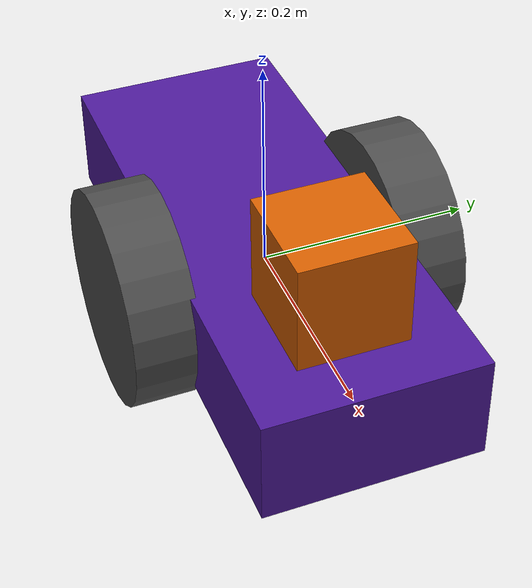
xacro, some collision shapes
<?xml version='1.0'?>

<robot name="my_robot" xmlns:xacro="http://www.ros.org/wiki/xacro">

  <link name="robot_footprint"></link>
  <xacro:include filename="$(find my_robot)/urdf/my_robot.gazebo" />

  <joint name="robot_footprint_joint" type="fixed">
    <origin xyz="0 0 0" rpy="0 0 0" />
    <parent link="robot_footprint"/>
    <child link="chassis" />
  </joint>

  <link name='chassis'>
    <pose>0 0 0.1 0 0 0</pose>

    <inertial>
      <mass value="15.0"/>
      <origin xyz="0.0 0 0" rpy=" 0 0 0"/>
      <inertia
              ixx="0.1" ixy="0" ixz="0"
              iyy="0.1" iyz="0"
              izz="0.1"
      />
    </inertial>

    <collision name='collision'>
      <origin xyz="0 0 0" rpy=" 0 0 0"/>
      <geometry>
        <box size=".5 .2 .1"/>
      </geometry>
    </collision>

    <visual name='chassis_visual'>
      <origin xyz="0 0 0" rpy=" 0 0 0"/>
      <geometry>
        <box size=".5 .2 .1"/>
      </geometry>
    </visual>

    <collision name='back_caster_collision'>
      <origin xyz="-0.15 0 -0.05" rpy=" 0 0 0"/>
      <geometry>
        <sphere radius="0.05"/>
      </geometry>
    </collision>

    <visual name='back_caster_visual'>
      <origin xyz="-0.15 0 -0.05" rpy=" 0 0 0"/>
      <geometry>
        <sphere radius="0.05"/>
      </geometry>
    </visual>

    <collision name='front_caster_collision'>
      <origin xyz="0.15 0 -0.05" rpy=" 0 0 0"/>
      <geometry>
        <sphere radius="0.0499"/>
      </geometry>
    </collision>

    <visual name='front_caster_visual'>
      <origin xyz="0.15 0 -0.05" rpy=" 0 0 0"/>
      <geometry>
        <sphere radius="0.0499"/>
      </geometry>
    </visual>

  </link>

  <!-- Add two wheels -->

  <link name="left_wheel">
    <inertial>
      <origin xyz="0 0 0" rpy="0 1.5707 1.5707"/>
      <mass value="5"/>
      <inertia
              ixx="0.1" ixy="0" ixz="0"
              iyy="0.1" iyz="0" izz="0.1"
      />
    </inertial>

    <collision>
      <origin xyz="0 0 0" rpy="0 1.5707 1.5707"/>
      <geometry>
        <cylinder radius="0.1" length="0.06"/>
      </geometry>
    </collision>

    <visual>
      <origin xyz="0 0 0" rpy="0 1.5707 1.5707"/>
      <geometry>
        <cylinder radius="0.1" length="0.06"/>
      </geometry>
    </visual>

  </link>

  <link name="right_wheel">
    <inertial>
      <origin xyz="0 0 0" rpy="0 1.5707 1.5707"/>
      <mass value="5"/>
      <inertia
              ixx="0.1" ixy="0" ixz="0"
              iyy="0.1" iyz="0" izz="0.1"
      />
    </inertial>

    <collision>
      <origin xyz="0 0 0" rpy="0 1.5707 1.5707"/>
      <geometry>
        <cylinder radius="0.1" length="0.06"/>
      </geometry>
    </collision>

    <visual>
      <origin xyz="0 0 0" rpy="0 1.5707 1.5707"/>
      <geometry>
        <cylinder radius="0.1" length="0.06"/>
      </geometry>
    </visual>
  </link>

  <joint name="left_wheel_hinge" type="continuous">
    <origin xyz="0 0.125 0" rpy="0 0 0"/>
    <child link="left_wheel"/>
    <parent link="chassis"/>
    <axis xyz="0 1 0" rpy="0 0 0"/>
    <limit effort="10000" velocity="1000"/>
    <dynamics damping="1.0" friction="1.0"/>
  </joint>

  <joint name="right_wheel_hinge" type="continuous">
    <origin xyz="0 -0.125 0" rpy="0 0 0"/>
    <child link="right_wheel"/>
    <parent link="chassis"/>
    <axis xyz="0 1 0" rpy="0 0 0"/>
    <limit effort="10000" velocity="1000"/>
    <dynamics damping="1.0" friction="1.0"/>
  </joint>

  <!-- Add camera -->

  <link name="camera">
    <origin xyz="0 0 0" rpy="0 0 0" />

    <inertial>
      <mass value="0.1"/>
      <inertia
              ixx="1e-6" ixy="0" ixz="0"
              iyy="1e-6" iyz="0" izz="1e-6"
      />
    </inertial>

    <collision>
      <geometry>
        <box size="0.06 0.06 0.06"/>
      </geometry>
    </collision>

    <visual>
      <geometry>
        <box size="0.06 0.06 0.06"/>
      </geometry>
    </visual>
  </link>

  <joint type="fixed" name="camera_joint">
    <origin xyz="0.2 0 0" rpy="0 0 0"/>
    <child link="camera"/>
    <parent link="chassis"/>
    <axis xyz="0 1 0" rpy="0 0 0"/>
    <limit effort="10000" velocity="1000"/>
    <dynamics damping="1.0" friction="1.0"/>
  </joint>

  <!-- Add Lidar -->

  <link name="hokuyo">
    <origin xyz="0 0 0" rpy="0 0 0" />

    <inertial>
      <mass value="1e-5"/>
      <inertia
              ixx="1e-6" ixy="0" ixz="0"
              iyy="1e-6" iyz="0" izz="1e-6"
      />
    </inertial>

    <collision>
      <geometry>
        <box size=".1 .1 .1"/>
      </geometry>
    </collision>

    <visual>
      <geometry>
        <mesh filename="package://my_robot/meshes/hokuyo.dae"/>
      </geometry>
    </visual>
  </link>

  <joint name="camera_optical_joint" type="fixed">
    <origin xyz="0 0 0" rpy="-1.5707 0 -1.5707"/>
    <parent link="camera"/>
    <child link="camera_link_optical"/>
  </joint>

  <link name="camera_link_optical">
  </link>

  <link name="camera_rgbd_frame"></link>
  <joint name="camera_rgbd_joint" type="fixed">
	<origin xyz="0 0 0" rpy="-${pi/2} 0 -${pi/2}"/>
	<parent link="camera"/>
	<child link="camera_rgbd_frame"/>
  </joint>

  <joint name="hokuyo_joint" type="fixed">
    <axis xyz="0 1 0"/>
    <origin xyz="0.15 0 0.1" rpy="0 0 0" />
    <parent link="chassis"/>
    <child link="hokuyo" />
  </joint>

  <gazebo reference="chassis">
    <material>Gazebo/Indigo</material>
  </gazebo>

  <gazebo reference="left_wheel">
    <material>Gazebo/DarkGrey</material>
  </gazebo>

  <gazebo reference="right_wheel">
    <material>Gazebo/DarkGrey</material>
  </gazebo>

  <gazebo reference="camera">
    <material>Gazebo/SkyBlue</material>
  </gazebo>

</robot>
